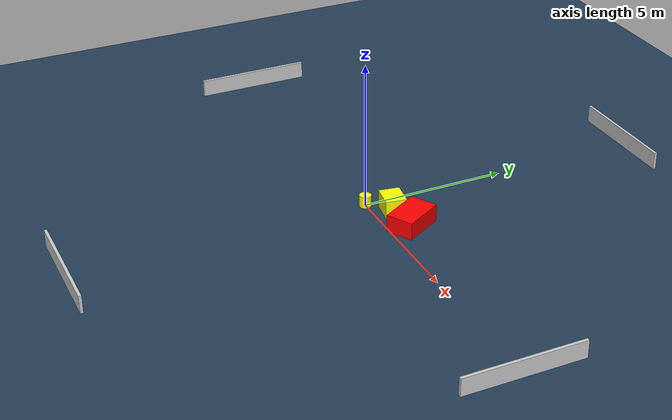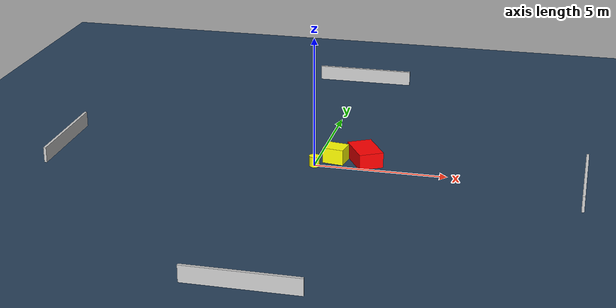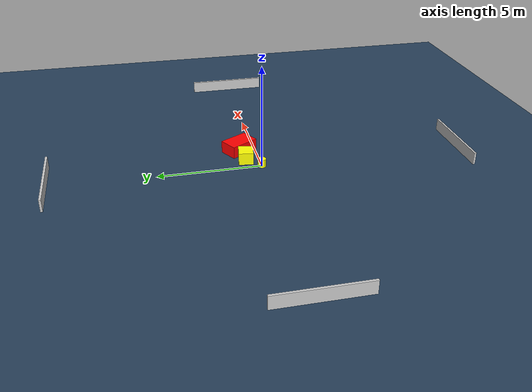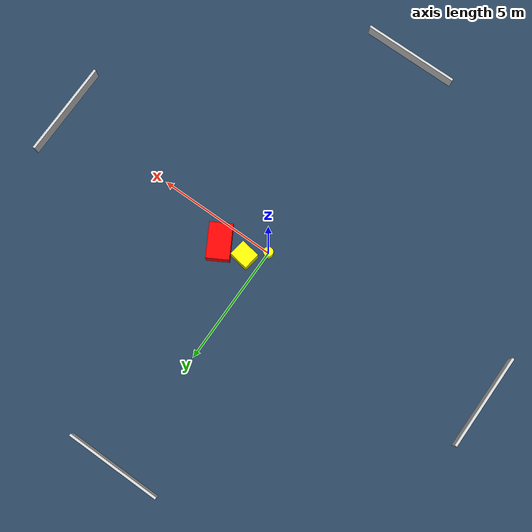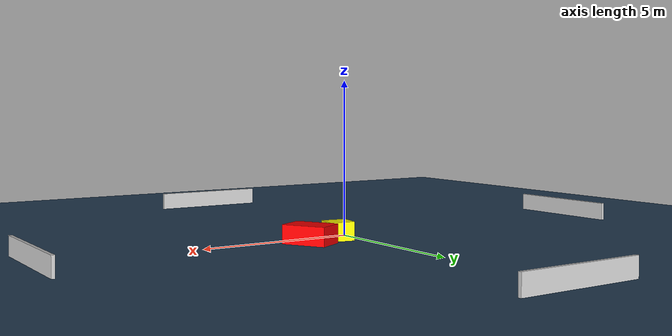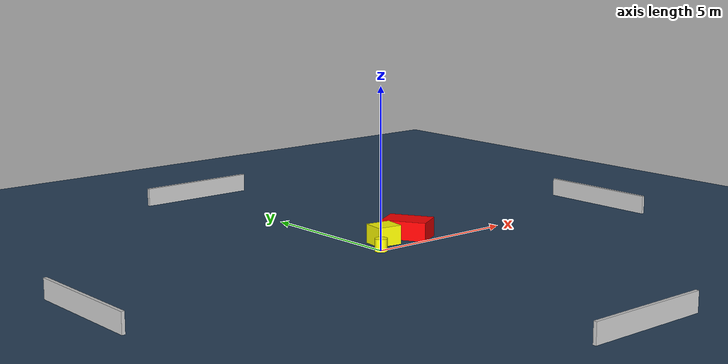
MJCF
<?xml version="1.0" ?>
<mujoco model="generated_environment">
  <option timestep="0.01" integrator="RK4" cone="elliptic"/>
  <default>
    <geom density="1"/>
  </default>
  <asset>
    <texture builtin="gradient" height="3072" name="skybox" rgb1="0.3 0.5 0.7" rgb2="0 0 0" type="skybox" width="512"/>
    <texture builtin="checker" height="300" name="groundplane" rgb1="0.2 0.3 0.4" rgb2="0.1 0.2 0.3" type="2d" width="300"/>
    <material name="groundplane" reflectance="0.2" texrepeat="5 5" texture="groundplane"/>
  </asset>
  <worldbody>
    <light dir="0 0 -1" directional="true" pos="0 0 1.5"/>
    <geom condim="3" friction="0.5 0.005 0.001" material="groundplane" name="floor" pos="0 0 0" size="0 0 0.05" type="plane"/>
    <body name="walls">
      <geom name="wall_1" condim="4" pos="-10.0 0.0 0.3" rgba="0.800000011920929 0.800000011920929 0.800000011920929 1.0" size="0.05 2.0 0.3" type="box"/>
      <geom name="wall_2" condim="4" pos="10.0 0.0 0.3" rgba="0.800000011920929 0.800000011920929 0.800000011920929 1.0" size="0.05 2.0 0.3" type="box"/>
      <geom name="wall_3" condim="4" pos="0.0 -10.0 0.3" rgba="0.800000011920929 0.800000011920929 0.800000011920929 1.0" size="2.0 0.05 0.3" type="box"/>
      <geom name="wall_4" condim="4" pos="0.0 10.0 0.3" rgba="0.800000011920929 0.800000011920929 0.800000011920929 1.0" size="2.0 0.05 0.3" type="box"/>
    </body>
    <body name="robot">
      <joint name="joint_x" type="slide" pos="0 0 0" axis="1 0 0"/>
      <joint name="joint_y" type="slide" pos="0 0 0" axis="0 1 0"/>
      <geom name="robot" type="cylinder" pos="0.0 0.0 0.2" size="0.2 0.2 0.0" mass="5.0" friction="1.0 0.005 0.0001" condim="4" rgba="1.0 1.0 0.0 1.0"/>
    </body>
    <body name="obstacle_1_movable">
      <geom name="obstacle_1_movable" condim="4" pos="0.679803713778001 0.6516963547405048 0.3" euler="0 0 351.3533787778006" friction="0.0 0.005 0.001" rgba="1.0 1.0 0.0 1.0" size="0.40662623101133155 0.35357986743646264 0.3" type="box" mass="0.1"/>
      <joint type="free"/>
    </body>
    <body name="obstacle_2_static">
      <geom name="obstacle_2_static" condim="4" pos="1.787973969291172 0.7787204452845048 0.3" euler="0 0 299.8212016691284" friction="0.0 0.005 0.001" rgba="1.0 0.0 0.0 1.0" size="0.7234134288466885 0.4698606481666597 0.3" type="box"/>
    </body>
  </worldbody>
  <actuator>
    <motor name="actuator_x" joint="joint_x" gear="1" ctrlrange="-1 1"/>
    <motor name="actuator_y" joint="joint_y" gear="1" ctrlrange="-1 1"/>
  </actuator>
</mujoco>
